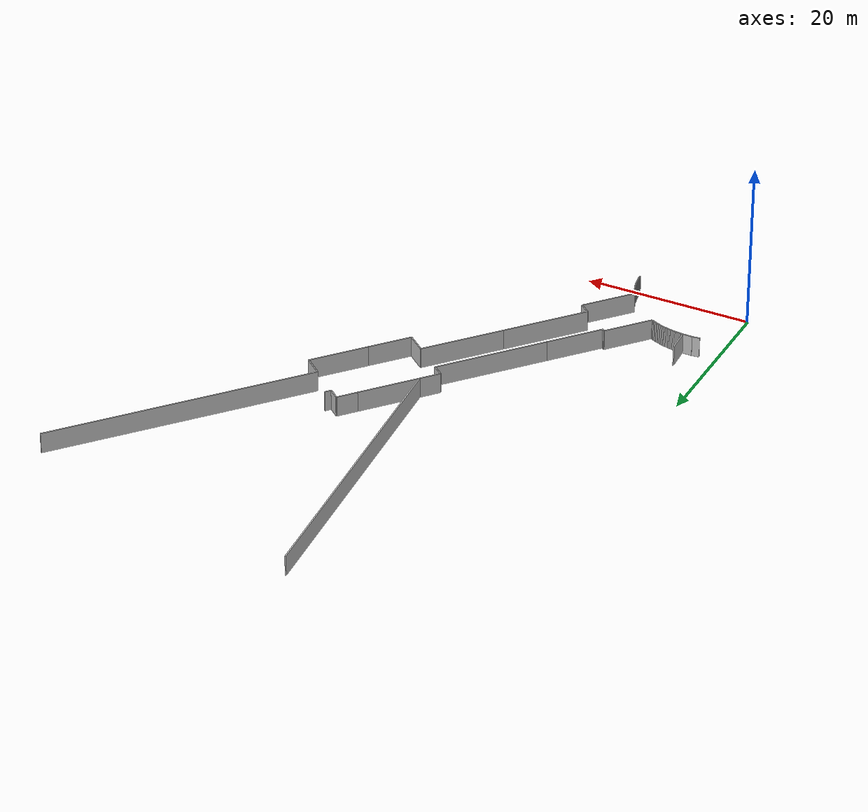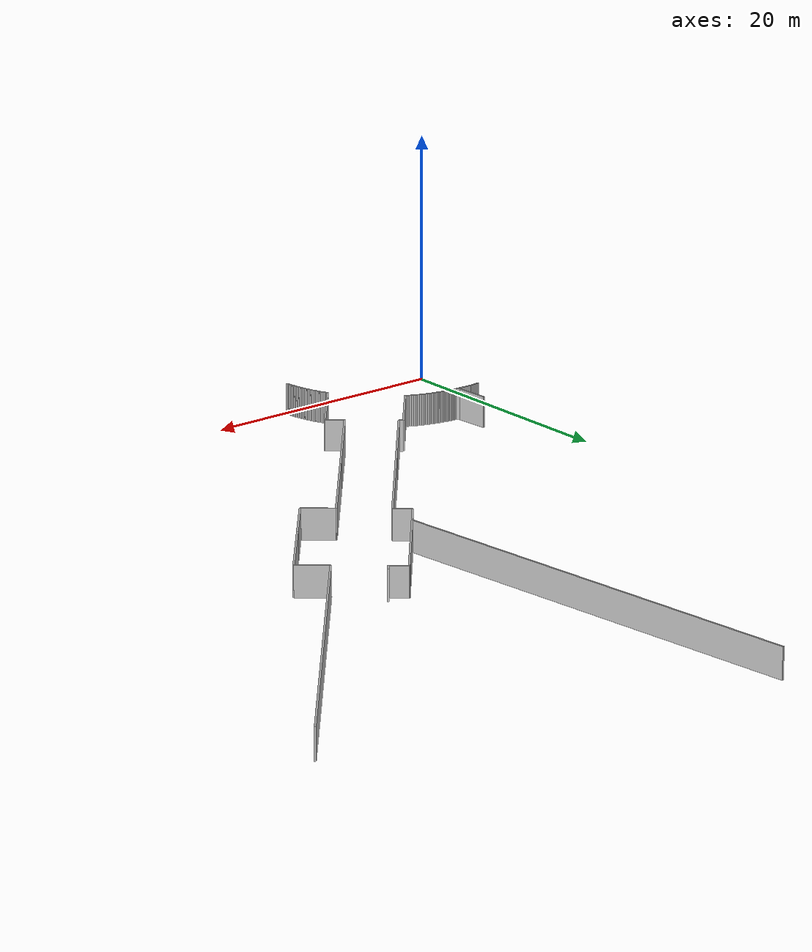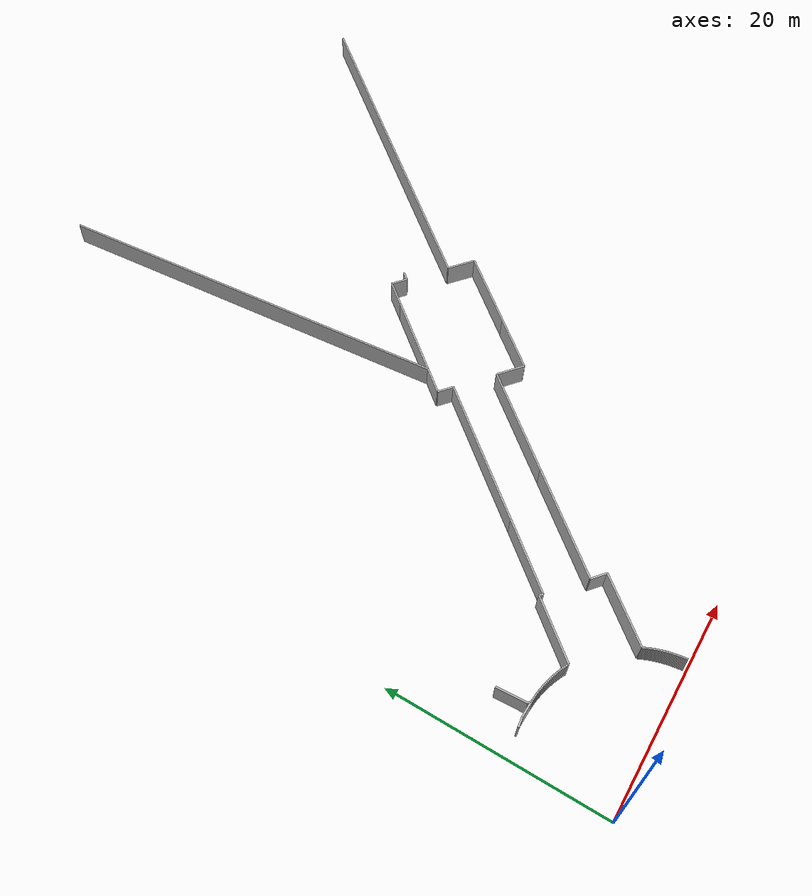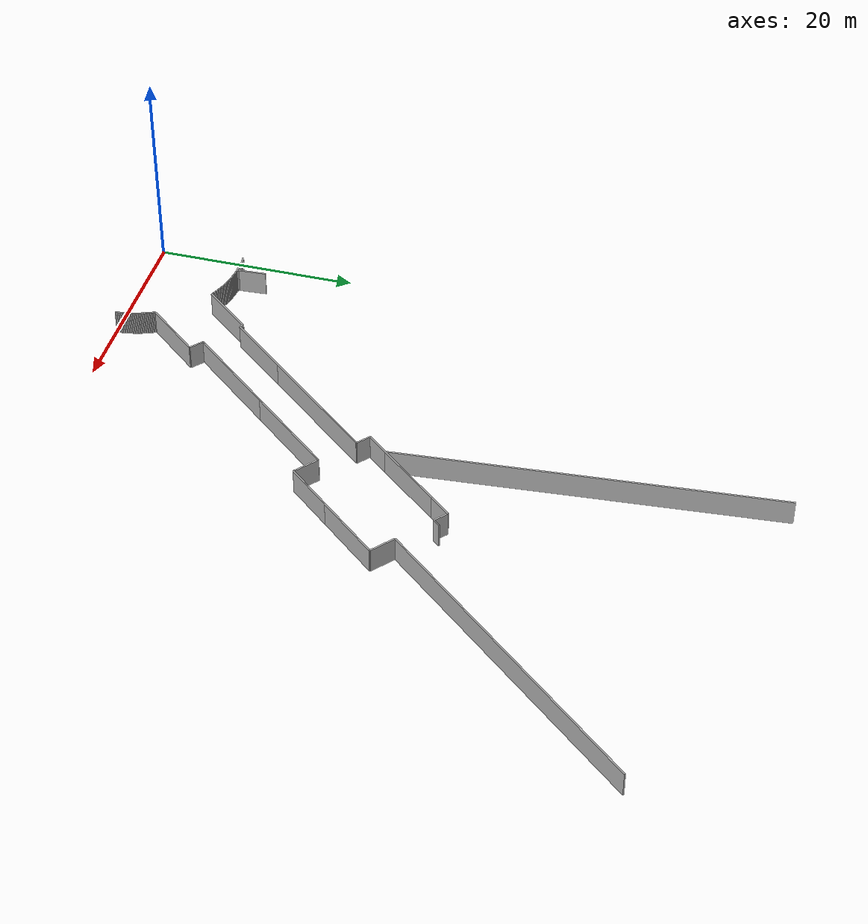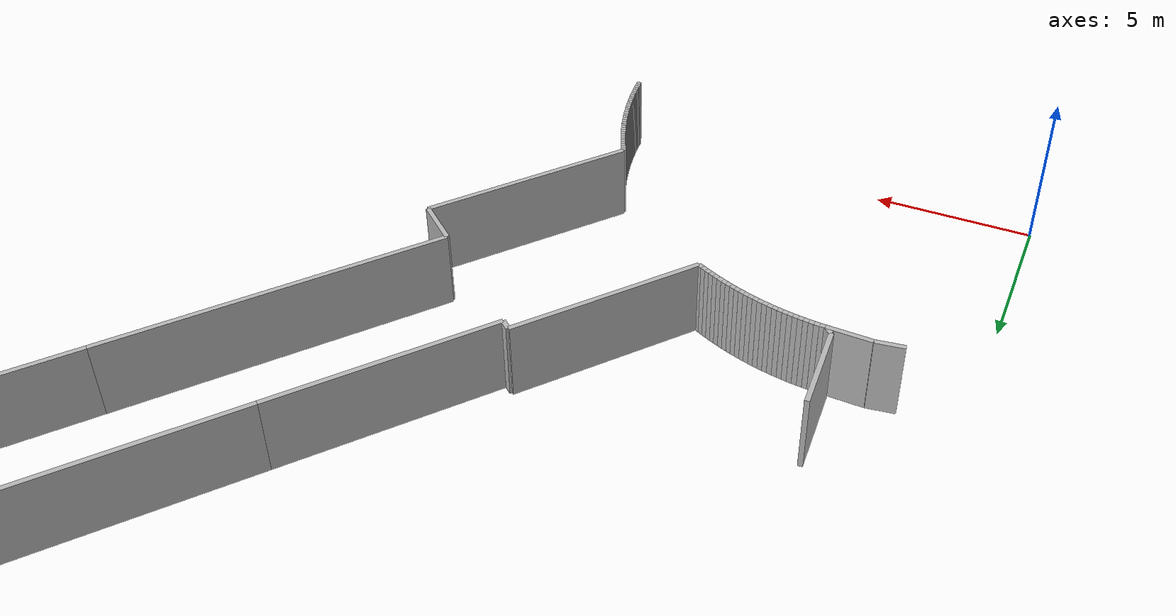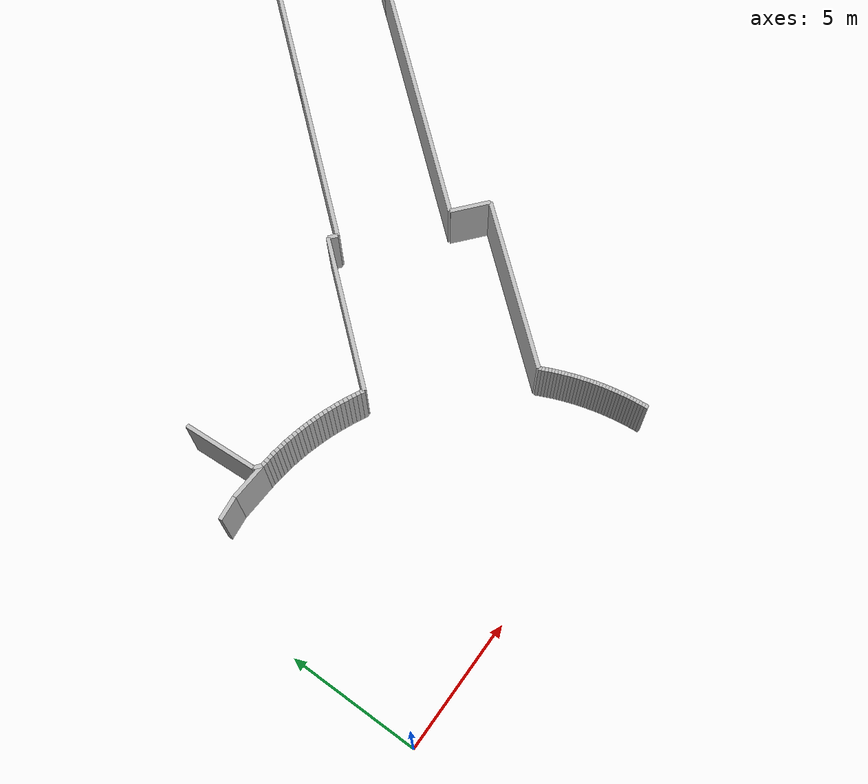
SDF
<?xml version="1.0" ?>
<sdf version="1.6">
  <model name="sps_4111">
    <pose frame="">0 0 0 0 -0 0</pose>
    <static>1</static>
    <self_collide>0</self_collide>
    <allow_auto_disable>0</allow_auto_disable>
    <link name="Wall58">
      <kinematic>0</kinematic>
      <gravity>1</gravity>
      <self_collide>0</self_collide>
      <collision name="collision">
        <geometry>
          <box>
            <size>0.350354 0.15 2.5</size>
          </box>
        </geometry>
        <pose frame="">0 0 0 0 -0 0</pose>
      </collision>
      <visual name="visual">
        <geometry>
          <box>
            <size>0.350354 0.15 2.5</size>
          </box>
        </geometry>
        <pose frame="">0 0 0 0 -0 0</pose>
        <cast_shadows>1</cast_shadows>
        <transparency>0.0</transparency>
      </visual>
      <pose frame="">12.3785 12.6861 1.25 0 0 -0.702523</pose>
    </link>
    <link name="Wall59">
      <kinematic>0</kinematic>
      <gravity>1</gravity>
      <self_collide>0</self_collide>
      <collision name="collision">
        <geometry>
          <box>
            <size>13.6817 0.15 2.5</size>
          </box>
        </geometry>
        <pose frame="">0 0 0 0 -0 0</pose>
      </collision>
      <visual name="visual">
        <geometry>
          <box>
            <size>13.6817 0.15 2.5</size>
          </box>
        </geometry>
        <pose frame="">0 0 0 0 -0 0</pose>
        <cast_shadows>1</cast_shadows>
        <transparency>0.0</transparency>
      </visual>
      <pose frame="">21.4438 23.1119 1.25 0 0 -2.27383</pose>
    </link>
    <link name="Wall60">
      <kinematic>0</kinematic>
      <gravity>1</gravity>
      <self_collide>0</self_collide>
      <collision name="collision">
        <geometry>
          <box>
            <size>6.97376 0.15 2.5</size>
          </box>
        </geometry>
        <pose frame="">0 0 0 0 -0 0</pose>
      </collision>
      <visual name="visual">
        <geometry>
          <box>
            <size>6.97376 0.15 2.5</size>
          </box>
        </geometry>
        <pose frame="">0 0 0 0 -0 0</pose>
        <cast_shadows>1</cast_shadows>
        <transparency>0.0</transparency>
      </visual>
      <pose frame="">14.7666 15.233 1.25 0 0 -2.27383</pose>
    </link>
    <link name="Wall61">
      <kinematic>0</kinematic>
      <gravity>1</gravity>
      <self_collide>0</self_collide>
      <collision name="collision">
        <geometry>
          <box>
            <size>2.50061 0.15 2.5</size>
          </box>
        </geometry>
        <pose frame="">0 0 0 0 -0 0</pose>
      </collision>
      <visual name="visual">
        <geometry>
          <box>
            <size>2.50061 0.15 2.5</size>
          </box>
        </geometry>
        <pose frame="">0 0 0 0 -0 0</pose>
        <cast_shadows>1</cast_shadows>
        <transparency>0.0</transparency>
      </visual>
      <pose frame="">31.9957 37.8829 1.25 0 0 -2.27365</pose>
    </link>
    <link name="Wall62">
      <kinematic>0</kinematic>
      <gravity>1</gravity>
      <self_collide>0</self_collide>
      <collision name="collision">
        <geometry>
          <box>
            <size>5.28264 0.15 2.5</size>
          </box>
        </geometry>
        <pose frame="">0 0 0 0 -0 0</pose>
      </collision>
      <visual name="visual">
        <geometry>
          <box>
            <size>5.28264 0.15 2.5</size>
          </box>
        </geometry>
        <pose frame="">0 0 0 0 -0 0</pose>
        <cast_shadows>1</cast_shadows>
        <transparency>0.0</transparency>
      </visual>
      <pose frame="">32.7617 25.9493 1.25 0 -0 0.867764</pose>
    </link>
    <link name="Wall63">
      <kinematic>0</kinematic>
      <gravity>1</gravity>
      <self_collide>0</self_collide>
      <collision name="collision">
        <geometry>
          <box>
            <size>7.21753 0.15 2.5</size>
          </box>
        </geometry>
        <pose frame="">0 0 0 0 -0 0</pose>
      </collision>
      <visual name="visual">
        <geometry>
          <box>
            <size>7.21753 0.15 2.5</size>
          </box>
        </geometry>
        <pose frame="">0 0 0 0 -0 0</pose>
        <cast_shadows>1</cast_shadows>
        <transparency>0.0</transparency>
      </visual>
      <pose frame="">36.8026 30.7174 1.25 0 -0 0.867764</pose>
    </link>
    <link name="Wall65">
      <kinematic>0</kinematic>
      <gravity>1</gravity>
      <self_collide>0</self_collide>
      <collision name="collision">
        <geometry>
          <box>
            <size>0.806139 0.15 2.5</size>
          </box>
        </geometry>
        <pose frame="">0 0 0 0 -0 0</pose>
      </collision>
      <visual name="visual">
        <geometry>
          <box>
            <size>0.806139 0.15 2.5</size>
          </box>
        </geometry>
        <pose frame="">0 0 0 0 -0 0</pose>
        <cast_shadows>1</cast_shadows>
        <transparency>0.0</transparency>
      </visual>
      <pose frame="">34.2089 38.174 1.25 0 0 -2.2738</pose>
    </link>
    <link name="Wall140">
      <kinematic>0</kinematic>
      <gravity>1</gravity>
      <self_collide>0</self_collide>
      <collision name="collision">
        <geometry>
          <box>
            <size>1.51018 0.15 2.5</size>
          </box>
        </geometry>
        <pose frame="">0 0 0 0 -0 0</pose>
      </collision>
      <visual name="visual">
        <geometry>
          <box>
            <size>1.51018 0.15 2.5</size>
          </box>
        </geometry>
        <pose frame="">0 0 0 0 -0 0</pose>
        <cast_shadows>1</cast_shadows>
        <transparency>0.0</transparency>
      </visual>
      <pose frame="">16.2469 9.40868 1.25 0 0 -0.702713</pose>
    </link>
    <link name="Wall141">
      <kinematic>0</kinematic>
      <gravity>1</gravity>
      <self_collide>0</self_collide>
      <collision name="collision">
        <geometry>
          <box>
            <size>1.50024 0.15 2.5</size>
          </box>
        </geometry>
        <pose frame="">0 0 0 0 -0 0</pose>
      </collision>
      <visual name="visual">
        <geometry>
          <box>
            <size>1.50024 0.15 2.5</size>
          </box>
        </geometry>
        <pose frame="">0 0 0 0 -0 0</pose>
        <cast_shadows>1</cast_shadows>
        <transparency>0.0</transparency>
      </visual>
      <pose frame="">25.2942 28.8154 1.25 0 0 -0.70251</pose>
    </link>
    <link name="Wall249">
      <kinematic>0</kinematic>
      <gravity>1</gravity>
      <self_collide>0</self_collide>
      <collision name="collision">
        <geometry>
          <box>
            <size>5.99993 0.15 2.5</size>
          </box>
        </geometry>
        <pose frame="">0 0 0 0 -0 0</pose>
      </collision>
      <visual name="visual">
        <geometry>
          <box>
            <size>5.99993 0.15 2.5</size>
          </box>
        </geometry>
        <pose frame="">0 0 0 0 -0 0</pose>
        <cast_shadows>1</cast_shadows>
        <transparency>0.0</transparency>
      </visual>
      <pose frame="">10.3054 10.5105 1.25 0 -0 0.867846</pose>
    </link>
    <link name="Wall315">
      <kinematic>0</kinematic>
      <gravity>1</gravity>
      <self_collide>0</self_collide>
      <collision name="collision">
        <geometry>
          <box>
            <size>6.63013 0.15 2.5</size>
          </box>
        </geometry>
        <pose frame="">0 0 0 0 -0 0</pose>
      </collision>
      <visual name="visual">
        <geometry>
          <box>
            <size>6.63013 0.15 2.5</size>
          </box>
        </geometry>
        <pose frame="">0 0 0 0 -0 0</pose>
        <cast_shadows>1</cast_shadows>
        <transparency>0.0</transparency>
      </visual>
      <pose frame="">14.6799 6.39159 1.25 0 0 -2.2738</pose>
    </link>
    <link name="Wall379">
      <kinematic>0</kinematic>
      <gravity>1</gravity>
      <self_collide>0</self_collide>
      <collision name="collision">
        <geometry>
          <box>
            <size>2.66028 0.15 2.5</size>
          </box>
        </geometry>
        <pose frame="">0 0 0 0 -0 0</pose>
      </collision>
      <visual name="visual">
        <geometry>
          <box>
            <size>2.66028 0.15 2.5</size>
          </box>
        </geometry>
        <pose frame="">0 0 0 0 -0 0</pose>
        <cast_shadows>1</cast_shadows>
        <transparency>0.0</transparency>
      </visual>
      <pose frame="">38.1209 34.3303 1.25 0 -0 2.43873</pose>
    </link>
    <link name="Wall471">
      <kinematic>0</kinematic>
      <gravity>1</gravity>
      <self_collide>0</self_collide>
      <collision name="collision">
        <geometry>
          <box>
            <size>10.4816 0.15 2.5</size>
          </box>
        </geometry>
        <pose frame="">0 0 0 0 -0 0</pose>
      </collision>
      <visual name="visual">
        <geometry>
          <box>
            <size>10.4816 0.15 2.5</size>
          </box>
        </geometry>
        <pose frame="">0 0 0 0 -0 0</pose>
        <cast_shadows>1</cast_shadows>
        <transparency>0.0</transparency>
      </visual>
      <pose frame="">19.0589 13.8949 1.25 0 -0 0.867786</pose>
    </link>
    <link name="Wall472">
      <kinematic>0</kinematic>
      <gravity>1</gravity>
      <self_collide>0</self_collide>
      <collision name="collision">
        <geometry>
          <box>
            <size>10.1733 0.15 2.5</size>
          </box>
        </geometry>
        <pose frame="">0 0 0 0 -0 0</pose>
      </collision>
      <visual name="visual">
        <geometry>
          <box>
            <size>10.1733 0.15 2.5</size>
          </box>
        </geometry>
        <pose frame="">0 0 0 0 -0 0</pose>
        <cast_shadows>1</cast_shadows>
        <transparency>0.0</transparency>
      </visual>
      <pose frame="">25.7358 21.7737 1.25 0 -0 0.867786</pose>
    </link>
    <link name="Wall473">
      <kinematic>0</kinematic>
      <gravity>1</gravity>
      <self_collide>0</self_collide>
      <collision name="collision">
        <geometry>
          <box>
            <size>2.66041 0.15 2.5</size>
          </box>
        </geometry>
        <pose frame="">0 0 0 0 -0 0</pose>
      </collision>
      <visual name="visual">
        <geometry>
          <box>
            <size>2.66041 0.15 2.5</size>
          </box>
        </geometry>
        <pose frame="">0 0 0 0 -0 0</pose>
        <cast_shadows>1</cast_shadows>
        <transparency>0.0</transparency>
      </visual>
      <pose frame="">30.0392 24.7943 1.25 0 0 -0.703025</pose>
    </link>
    <link name="Wall642">
      <kinematic>0</kinematic>
      <gravity>1</gravity>
      <self_collide>0</self_collide>
      <collision name="collision">
        <geometry>
          <box>
            <size>0.299507 0.15 2.5</size>
          </box>
        </geometry>
        <pose frame="">0 0 0 0 -0 0</pose>
      </collision>
      <visual name="visual">
        <geometry>
          <box>
            <size>0.299507 0.15 2.5</size>
          </box>
        </geometry>
        <pose frame="">0 0 0 0 -0 0</pose>
        <cast_shadows>1</cast_shadows>
        <transparency>0.0</transparency>
      </visual>
      <pose frame="">4.11254 9.46669 1.25 0 0 -0.704471</pose>
    </link>
    <link name="Wall643">
      <kinematic>0</kinematic>
      <gravity>1</gravity>
      <self_collide>0</self_collide>
      <collision name="collision">
        <geometry>
          <box>
            <size>2.5007 0.15 2.5</size>
          </box>
        </geometry>
        <pose frame="">0 0 0 0 -0 0</pose>
      </collision>
      <visual name="visual">
        <geometry>
          <box>
            <size>2.5007 0.15 2.5</size>
          </box>
        </geometry>
        <pose frame="">0 0 0 0 -0 0</pose>
        <cast_shadows>1</cast_shadows>
        <transparency>0.0</transparency>
      </visual>
      <pose frame="">25.5302 30.2538 1.25 0 0 -2.27404</pose>
    </link>
    <link name="Wall644">
      <kinematic>0</kinematic>
      <gravity>1</gravity>
      <self_collide>0</self_collide>
      <collision name="collision">
        <geometry>
          <box>
            <size>1.50045 0.15 2.5</size>
          </box>
        </geometry>
        <pose frame="">0 0 0 0 -0 0</pose>
      </collision>
      <visual name="visual">
        <geometry>
          <box>
            <size>1.50045 0.15 2.5</size>
          </box>
        </geometry>
        <pose frame="">0 0 0 0 -0 0</pose>
        <cast_shadows>1</cast_shadows>
        <transparency>0.0</transparency>
      </visual>
      <pose frame="">33.3761 38.3517 1.25 0 -0 2.43829</pose>
    </link>
    <link name="Wall645">
      <kinematic>0</kinematic>
      <gravity>1</gravity>
      <self_collide>0</self_collide>
      <collision name="collision">
        <geometry>
          <box>
            <size>32.5434 0.15 2.5</size>
          </box>
        </geometry>
        <pose frame="">0 0 0 0 -0 0</pose>
      </collision>
      <visual name="visual">
        <geometry>
          <box>
            <size>32.5434 0.15 2.5</size>
          </box>
        </geometry>
        <pose frame="">0 0 0 0 -0 0</pose>
        <cast_shadows>1</cast_shadows>
        <transparency>0.0</transparency>
      </visual>
      <pose frame="">47.6261 47.6037 1.25 0 -0 0.867779</pose>
    </link>
    <link name="Wall1113">
      <kinematic>0</kinematic>
      <gravity>1</gravity>
      <self_collide>0</self_collide>
      <collision name="collision">
        <geometry>
          <box>
            <size>2.75885 0.15 2.5</size>
          </box>
        </geometry>
        <pose frame="">0 0 0 0 -0 0</pose>
      </collision>
      <visual name="visual">
        <geometry>
          <box>
            <size>2.75885 0.15 2.5</size>
          </box>
        </geometry>
        <pose frame="">0 0 0 0 -0 0</pose>
        <cast_shadows>1</cast_shadows>
        <transparency>0.0</transparency>
      </visual>
      <pose frame="">3.92046 10.9409 1.25 0 0 -1.51393</pose>
    </link>
    <link name="Wall1114">
      <kinematic>0</kinematic>
      <gravity>1</gravity>
      <self_collide>0</self_collide>
      <collision name="collision">
        <geometry>
          <box>
            <size>0.299202 0.15 2.5</size>
          </box>
        </geometry>
        <pose frame="">0 0 0 0 -0 0</pose>
      </collision>
      <visual name="visual">
        <geometry>
          <box>
            <size>0.299202 0.15 2.5</size>
          </box>
        </geometry>
        <pose frame="">0 0 0 0 -0 0</pose>
        <cast_shadows>1</cast_shadows>
        <transparency>0.0</transparency>
      </visual>
      <pose frame="">4.11285 9.46678 1.25 0 0 -0.704533</pose>
    </link>
    <link name="Wall1115">
      <kinematic>0</kinematic>
      <gravity>1</gravity>
      <self_collide>0</self_collide>
      <collision name="collision">
        <geometry>
          <box>
            <size>1.3896 0.15 2.5</size>
          </box>
        </geometry>
        <pose frame="">0 0 0 0 -0 0</pose>
      </collision>
      <visual name="visual">
        <geometry>
          <box>
            <size>1.3896 0.15 2.5</size>
          </box>
        </geometry>
        <pose frame="">0 0 0 0 -0 0</pose>
        <cast_shadows>1</cast_shadows>
        <transparency>0.0</transparency>
      </visual>
      <pose frame="">3.53274 9.40129 1.25 0 -0 3.09638</pose>
    </link>
    <link name="Wall1116">
      <kinematic>0</kinematic>
      <gravity>1</gravity>
      <self_collide>0</self_collide>
      <collision name="collision">
        <geometry>
          <box>
            <size>0.884401 0.15 2.5</size>
          </box>
        </geometry>
        <pose frame="">0 0 0 0 -0 0</pose>
      </collision>
      <visual name="visual">
        <geometry>
          <box>
            <size>0.884401 0.15 2.5</size>
          </box>
        </geometry>
        <pose frame="">0 0 0 0 -0 0</pose>
        <cast_shadows>1</cast_shadows>
        <transparency>0.0</transparency>
      </visual>
      <pose frame="">2.39974 9.3788 1.25 0 0 -3.01941</pose>
    </link>
    <link name="Wall1377">
      <kinematic>0</kinematic>
      <gravity>1</gravity>
      <self_collide>0</self_collide>
      <collision name="collision">
        <geometry>
          <box>
            <size>7.49982 0.15 2.5</size>
          </box>
        </geometry>
        <pose frame="">0 0 0 0 -0 0</pose>
      </collision>
      <visual name="visual">
        <geometry>
          <box>
            <size>7.49982 0.15 2.5</size>
          </box>
        </geometry>
        <pose frame="">0 0 0 0 -0 0</pose>
        <cast_shadows>1</cast_shadows>
        <transparency>0.0</transparency>
      </visual>
      <pose frame="">28.7634 34.0683 1.25 0 0 -2.2738</pose>
    </link>
    <link name="Wall1378">
      <kinematic>0</kinematic>
      <gravity>1</gravity>
      <self_collide>0</self_collide>
      <collision name="collision">
        <geometry>
          <box>
            <size>37.282 0.15 2.5</size>
          </box>
        </geometry>
        <pose frame="">0 0 0 0 -0 0</pose>
      </collision>
      <visual name="visual">
        <geometry>
          <box>
            <size>37.282 0.15 2.5</size>
          </box>
        </geometry>
        <pose frame="">0 0 0 0 -0 0</pose>
        <cast_shadows>1</cast_shadows>
        <transparency>0.0</transparency>
      </visual>
      <pose frame="">24.8054 49.7853 1.25 0 -0 1.65317</pose>
    </link>
    <link name="Wall8069">
      <kinematic>0</kinematic>
      <gravity>1</gravity>
      <self_collide>0</self_collide>
      <collision name="collision">
        <geometry>
          <box>
            <size>0.113875 0.15 2.5</size>
          </box>
        </geometry>
        <pose frame="">0 0 0 0 -0 0</pose>
      </collision>
      <visual name="visual">
        <geometry>
          <box>
            <size>0.113875 0.15 2.5</size>
          </box>
        </geometry>
        <pose frame="">0 0 0 0 -0 0</pose>
        <cast_shadows>1</cast_shadows>
        <transparency>0.0</transparency>
      </visual>
      <pose frame="">13.5402 0.0952901 1.25 0 -0 1.63408</pose>
    </link>
    <link name="Wall8070">
      <kinematic>0</kinematic>
      <gravity>1</gravity>
      <self_collide>0</self_collide>
      <collision name="collision">
        <geometry>
          <box>
            <size>0.113729 0.15 2.5</size>
          </box>
        </geometry>
        <pose frame="">0 0 0 0 -0 0</pose>
      </collision>
      <visual name="visual">
        <geometry>
          <box>
            <size>0.113729 0.15 2.5</size>
          </box>
        </geometry>
        <pose frame="">0 0 0 0 -0 0</pose>
        <cast_shadows>1</cast_shadows>
        <transparency>0.0</transparency>
      </visual>
      <pose frame="">13.5323 0.208815 1.25 0 -0 1.64654</pose>
    </link>
    <link name="Wall8071">
      <kinematic>0</kinematic>
      <gravity>1</gravity>
      <self_collide>0</self_collide>
      <collision name="collision">
        <geometry>
          <box>
            <size>0.113601 0.15 2.5</size>
          </box>
        </geometry>
        <pose frame="">0 0 0 0 -0 0</pose>
      </collision>
      <visual name="visual">
        <geometry>
          <box>
            <size>0.113601 0.15 2.5</size>
          </box>
        </geometry>
        <pose frame="">0 0 0 0 -0 0</pose>
        <cast_shadows>1</cast_shadows>
        <transparency>0.0</transparency>
      </visual>
      <pose frame="">13.523 0.322097 1.25 0 -0 1.65902</pose>
    </link>
    <link name="Wall8072">
      <kinematic>0</kinematic>
      <gravity>1</gravity>
      <self_collide>0</self_collide>
      <collision name="collision">
        <geometry>
          <box>
            <size>0.113752 0.15 2.5</size>
          </box>
        </geometry>
        <pose frame="">0 0 0 0 -0 0</pose>
      </collision>
      <visual name="visual">
        <geometry>
          <box>
            <size>0.113752 0.15 2.5</size>
          </box>
        </geometry>
        <pose frame="">0 0 0 0 -0 0</pose>
        <cast_shadows>1</cast_shadows>
        <transparency>0.0</transparency>
      </visual>
      <pose frame="">13.5125 0.435286 1.25 0 -0 1.66753</pose>
    </link>
    <link name="Wall8073">
      <kinematic>0</kinematic>
      <gravity>1</gravity>
      <self_collide>0</self_collide>
      <collision name="collision">
        <geometry>
          <box>
            <size>0.113674 0.15 2.5</size>
          </box>
        </geometry>
        <pose frame="">0 0 0 0 -0 0</pose>
      </collision>
      <visual name="visual">
        <geometry>
          <box>
            <size>0.113674 0.15 2.5</size>
          </box>
        </geometry>
        <pose frame="">0 0 0 0 -0 0</pose>
        <cast_shadows>1</cast_shadows>
        <transparency>0.0</transparency>
      </visual>
      <pose frame="">13.5008 0.548385 1.25 0 -0 1.68163</pose>
    </link>
    <link name="Wall8074">
      <kinematic>0</kinematic>
      <gravity>1</gravity>
      <self_collide>0</self_collide>
      <collision name="collision">
        <geometry>
          <box>
            <size>0.113876 0.15 2.5</size>
          </box>
        </geometry>
        <pose frame="">0 0 0 0 -0 0</pose>
      </collision>
      <visual name="visual">
        <geometry>
          <box>
            <size>0.113876 0.15 2.5</size>
          </box>
        </geometry>
        <pose frame="">0 0 0 0 -0 0</pose>
        <cast_shadows>1</cast_shadows>
        <transparency>0.0</transparency>
      </visual>
      <pose frame="">13.4876 0.661391 1.25 0 -0 1.69223</pose>
    </link>
    <link name="Wall8075">
      <kinematic>0</kinematic>
      <gravity>1</gravity>
      <self_collide>0</self_collide>
      <collision name="collision">
        <geometry>
          <box>
            <size>0.113606 0.15 2.5</size>
          </box>
        </geometry>
        <pose frame="">0 0 0 0 -0 0</pose>
      </collision>
      <visual name="visual">
        <geometry>
          <box>
            <size>0.113606 0.15 2.5</size>
          </box>
        </geometry>
        <pose frame="">0 0 0 0 -0 0</pose>
        <cast_shadows>1</cast_shadows>
        <transparency>0.0</transparency>
      </visual>
      <pose frame="">13.4732 0.774215 1.25 0 -0 1.70335</pose>
    </link>
    <link name="Wall8076">
      <kinematic>0</kinematic>
      <gravity>1</gravity>
      <self_collide>0</self_collide>
      <collision name="collision">
        <geometry>
          <box>
            <size>0.11374 0.15 2.5</size>
          </box>
        </geometry>
        <pose frame="">0 0 0 0 -0 0</pose>
      </collision>
      <visual name="visual">
        <geometry>
          <box>
            <size>0.11374 0.15 2.5</size>
          </box>
        </geometry>
        <pose frame="">0 0 0 0 -0 0</pose>
        <cast_shadows>1</cast_shadows>
        <transparency>0.0</transparency>
      </visual>
      <pose frame="">13.4575 0.886794 1.25 0 -0 1.71565</pose>
    </link>
    <link name="Wall8077">
      <kinematic>0</kinematic>
      <gravity>1</gravity>
      <self_collide>0</self_collide>
      <collision name="collision">
        <geometry>
          <box>
            <size>0.113765 0.15 2.5</size>
          </box>
        </geometry>
        <pose frame="">0 0 0 0 -0 0</pose>
      </collision>
      <visual name="visual">
        <geometry>
          <box>
            <size>0.113765 0.15 2.5</size>
          </box>
        </geometry>
        <pose frame="">0 0 0 0 -0 0</pose>
        <cast_shadows>1</cast_shadows>
        <transparency>0.0</transparency>
      </visual>
      <pose frame="">13.4405 0.999282 1.25 0 -0 1.7243</pose>
    </link>
    <link name="Wall8078">
      <kinematic>0</kinematic>
      <gravity>1</gravity>
      <self_collide>0</self_collide>
      <collision name="collision">
        <geometry>
          <box>
            <size>0.113777 0.15 2.5</size>
          </box>
        </geometry>
        <pose frame="">0 0 0 0 -0 0</pose>
      </collision>
      <visual name="visual">
        <geometry>
          <box>
            <size>0.113777 0.15 2.5</size>
          </box>
        </geometry>
        <pose frame="">0 0 0 0 -0 0</pose>
        <cast_shadows>1</cast_shadows>
        <transparency>0.0</transparency>
      </visual>
      <pose frame="">13.4224 1.11159 1.25 0 -0 1.73841</pose>
    </link>
    <link name="Wall8079">
      <kinematic>0</kinematic>
      <gravity>1</gravity>
      <self_collide>0</self_collide>
      <collision name="collision">
        <geometry>
          <box>
            <size>0.113775 0.15 2.5</size>
          </box>
        </geometry>
        <pose frame="">0 0 0 0 -0 0</pose>
      </collision>
      <visual name="visual">
        <geometry>
          <box>
            <size>0.113775 0.15 2.5</size>
          </box>
        </geometry>
        <pose frame="">0 0 0 0 -0 0</pose>
        <cast_shadows>1</cast_shadows>
        <transparency>0.0</transparency>
      </visual>
      <pose frame="">13.4029 1.22368 1.25 0 -0 1.74767</pose>
    </link>
    <link name="Wall8080">
      <kinematic>0</kinematic>
      <gravity>1</gravity>
      <self_collide>0</self_collide>
      <collision name="collision">
        <geometry>
          <box>
            <size>0.113659 0.15 2.5</size>
          </box>
        </geometry>
        <pose frame="">0 0 0 0 -0 0</pose>
      </collision>
      <visual name="visual">
        <geometry>
          <box>
            <size>0.113659 0.15 2.5</size>
          </box>
        </geometry>
        <pose frame="">0 0 0 0 -0 0</pose>
        <cast_shadows>1</cast_shadows>
        <transparency>0.0</transparency>
      </visual>
      <pose frame="">13.3822 1.33549 1.25 0 -0 1.75987</pose>
    </link>
    <link name="Wall8081">
      <kinematic>0</kinematic>
      <gravity>1</gravity>
      <self_collide>0</self_collide>
      <collision name="collision">
        <geometry>
          <box>
            <size>0.113847 0.15 2.5</size>
          </box>
        </geometry>
        <pose frame="">0 0 0 0 -0 0</pose>
      </collision>
      <visual name="visual">
        <geometry>
          <box>
            <size>0.113847 0.15 2.5</size>
          </box>
        </geometry>
        <pose frame="">0 0 0 0 -0 0</pose>
        <cast_shadows>1</cast_shadows>
        <transparency>0.0</transparency>
      </visual>
      <pose frame="">13.3602 1.4471 1.25 0 -0 1.77103</pose>
    </link>
    <link name="Wall8082">
      <kinematic>0</kinematic>
      <gravity>1</gravity>
      <self_collide>0</self_collide>
      <collision name="collision">
        <geometry>
          <box>
            <size>0.113764 0.15 2.5</size>
          </box>
        </geometry>
        <pose frame="">0 0 0 0 -0 0</pose>
      </collision>
      <visual name="visual">
        <geometry>
          <box>
            <size>0.113764 0.15 2.5</size>
          </box>
        </geometry>
        <pose frame="">0 0 0 0 -0 0</pose>
        <cast_shadows>1</cast_shadows>
        <transparency>0.0</transparency>
      </visual>
      <pose frame="">13.3368 1.55849 1.25 0 -0 1.78324</pose>
    </link>
    <link name="Wall8083">
      <kinematic>0</kinematic>
      <gravity>1</gravity>
      <self_collide>0</self_collide>
      <collision name="collision">
        <geometry>
          <box>
            <size>0.113611 0.15 2.5</size>
          </box>
        </geometry>
        <pose frame="">0 0 0 0 -0 0</pose>
      </collision>
      <visual name="visual">
        <geometry>
          <box>
            <size>0.113611 0.15 2.5</size>
          </box>
        </geometry>
        <pose frame="">0 0 0 0 -0 0</pose>
        <cast_shadows>1</cast_shadows>
        <transparency>0.0</transparency>
      </visual>
      <pose frame="">13.3122 1.66948 1.25 0 -0 1.79453</pose>
    </link>
    <link name="Wall8084">
      <kinematic>0</kinematic>
      <gravity>1</gravity>
      <self_collide>0</self_collide>
      <collision name="collision">
        <geometry>
          <box>
            <size>0.113752 0.15 2.5</size>
          </box>
        </geometry>
        <pose frame="">0 0 0 0 -0 0</pose>
      </collision>
      <visual name="visual">
        <geometry>
          <box>
            <size>0.113752 0.15 2.5</size>
          </box>
        </geometry>
        <pose frame="">0 0 0 0 -0 0</pose>
        <cast_shadows>1</cast_shadows>
        <transparency>0.0</transparency>
      </visual>
      <pose frame="">13.2863 1.78017 1.25 0 -0 1.80693</pose>
    </link>
    <link name="Wall8085">
      <kinematic>0</kinematic>
      <gravity>1</gravity>
      <self_collide>0</self_collide>
      <collision name="collision">
        <geometry>
          <box>
            <size>0.113807 0.15 2.5</size>
          </box>
        </geometry>
        <pose frame="">0 0 0 0 -0 0</pose>
      </collision>
      <visual name="visual">
        <geometry>
          <box>
            <size>0.113807 0.15 2.5</size>
          </box>
        </geometry>
        <pose frame="">0 0 0 0 -0 0</pose>
        <cast_shadows>1</cast_shadows>
        <transparency>0.0</transparency>
      </visual>
      <pose frame="">13.2592 1.89067 1.25 0 -0 1.81564</pose>
    </link>
    <link name="Wall8086">
      <kinematic>0</kinematic>
      <gravity>1</gravity>
      <self_collide>0</self_collide>
      <collision name="collision">
        <geometry>
          <box>
            <size>0.113565 0.15 2.5</size>
          </box>
        </geometry>
        <pose frame="">0 0 0 0 -0 0</pose>
      </collision>
      <visual name="visual">
        <geometry>
          <box>
            <size>0.113565 0.15 2.5</size>
          </box>
        </geometry>
        <pose frame="">0 0 0 0 -0 0</pose>
        <cast_shadows>1</cast_shadows>
        <transparency>0.0</transparency>
      </visual>
      <pose frame="">13.2309 2.00078 1.25 0 -0 1.82894</pose>
    </link>
    <link name="Wall8087">
      <kinematic>0</kinematic>
      <gravity>1</gravity>
      <self_collide>0</self_collide>
      <collision name="collision">
        <geometry>
          <box>
            <size>0.113883 0.15 2.5</size>
          </box>
        </geometry>
        <pose frame="">0 0 0 0 -0 0</pose>
      </collision>
      <visual name="visual">
        <geometry>
          <box>
            <size>0.113883 0.15 2.5</size>
          </box>
        </geometry>
        <pose frame="">0 0 0 0 -0 0</pose>
        <cast_shadows>1</cast_shadows>
        <transparency>0.0</transparency>
      </visual>
      <pose frame="">13.2013 2.11058 1.25 0 -0 1.8393</pose>
    </link>
    <link name="Wall8088">
      <kinematic>0</kinematic>
      <gravity>1</gravity>
      <self_collide>0</self_collide>
      <collision name="collision">
        <geometry>
          <box>
            <size>0.11366 0.15 2.5</size>
          </box>
        </geometry>
        <pose frame="">0 0 0 0 -0 0</pose>
      </collision>
      <visual name="visual">
        <geometry>
          <box>
            <size>0.11366 0.15 2.5</size>
          </box>
        </geometry>
        <pose frame="">0 0 0 0 -0 0</pose>
        <cast_shadows>1</cast_shadows>
        <transparency>0.0</transparency>
      </visual>
      <pose frame="">13.1705 2.22008 1.25 0 -0 1.85212</pose>
    </link>
    <link name="Wall8089">
      <kinematic>0</kinematic>
      <gravity>1</gravity>
      <self_collide>0</self_collide>
      <collision name="collision">
        <geometry>
          <box>
            <size>0.113794 0.15 2.5</size>
          </box>
        </geometry>
        <pose frame="">0 0 0 0 -0 0</pose>
      </collision>
      <visual name="visual">
        <geometry>
          <box>
            <size>0.113794 0.15 2.5</size>
          </box>
        </geometry>
        <pose frame="">0 0 0 0 -0 0</pose>
        <cast_shadows>1</cast_shadows>
        <transparency>0.0</transparency>
      </visual>
      <pose frame="">13.1384 2.32918 1.25 0 -0 1.86184</pose>
    </link>
    <link name="Wall8090">
      <kinematic>0</kinematic>
      <gravity>1</gravity>
      <self_collide>0</self_collide>
      <collision name="collision">
        <geometry>
          <box>
            <size>0.113605 0.15 2.5</size>
          </box>
        </geometry>
        <pose frame="">0 0 0 0 -0 0</pose>
      </collision>
      <visual name="visual">
        <geometry>
          <box>
            <size>0.113605 0.15 2.5</size>
          </box>
        </geometry>
        <pose frame="">0 0 0 0 -0 0</pose>
        <cast_shadows>1</cast_shadows>
        <transparency>0.0</transparency>
      </visual>
      <pose frame="">13.105 2.43788 1.25 0 -0 1.87471</pose>
    </link>
    <link name="Wall8091">
      <kinematic>0</kinematic>
      <gravity>1</gravity>
      <self_collide>0</self_collide>
      <collision name="collision">
        <geometry>
          <box>
            <size>0.113783 0.15 2.5</size>
          </box>
        </geometry>
        <pose frame="">0 0 0 0 -0 0</pose>
      </collision>
      <visual name="visual">
        <geometry>
          <box>
            <size>0.113783 0.15 2.5</size>
          </box>
        </geometry>
        <pose frame="">0 0 0 0 -0 0</pose>
        <cast_shadows>1</cast_shadows>
        <transparency>0.0</transparency>
      </visual>
      <pose frame="">13.0705 2.54619 1.25 0 -0 1.88491</pose>
    </link>
    <link name="Wall8092">
      <kinematic>0</kinematic>
      <gravity>1</gravity>
      <self_collide>0</self_collide>
      <collision name="collision">
        <geometry>
          <box>
            <size>0.11378 0.15 2.5</size>
          </box>
        </geometry>
        <pose frame="">0 0 0 0 -0 0</pose>
      </collision>
      <visual name="visual">
        <geometry>
          <box>
            <size>0.11378 0.15 2.5</size>
          </box>
        </geometry>
        <pose frame="">0 0 0 0 -0 0</pose>
        <cast_shadows>1</cast_shadows>
        <transparency>0.0</transparency>
      </visual>
      <pose frame="">13.0347 2.65419 1.25 0 -0 1.89679</pose>
    </link>
    <link name="Wall8093">
      <kinematic>0</kinematic>
      <gravity>1</gravity>
      <self_collide>0</self_collide>
      <collision name="collision">
        <geometry>
          <box>
            <size>0.113639 0.15 2.5</size>
          </box>
        </geometry>
        <pose frame="">0 0 0 0 -0 0</pose>
      </collision>
      <visual name="visual">
        <geometry>
          <box>
            <size>0.113639 0.15 2.5</size>
          </box>
        </geometry>
        <pose frame="">0 0 0 0 -0 0</pose>
        <cast_shadows>1</cast_shadows>
        <transparency>0.0</transparency>
      </visual>
      <pose frame="">12.9976 2.7617 1.25 0 -0 1.908</pose>
    </link>
    <link name="Wall8094">
      <kinematic>0</kinematic>
      <gravity>1</gravity>
      <self_collide>0</self_collide>
      <collision name="collision">
        <geometry>
          <box>
            <size>0.113568 0.15 2.5</size>
          </box>
        </geometry>
        <pose frame="">0 0 0 0 -0 0</pose>
      </collision>
      <visual name="visual">
        <geometry>
          <box>
            <size>0.113568 0.15 2.5</size>
          </box>
        </geometry>
        <pose frame="">0 0 0 0 -0 0</pose>
        <cast_shadows>1</cast_shadows>
        <transparency>0.0</transparency>
      </visual>
      <pose frame="">12.9595 2.8687 1.25 0 -0 1.91906</pose>
    </link>
    <link name="Wall8095">
      <kinematic>0</kinematic>
      <gravity>1</gravity>
      <self_collide>0</self_collide>
      <collision name="collision">
        <geometry>
          <box>
            <size>0.113898 0.15 2.5</size>
          </box>
        </geometry>
        <pose frame="">0 0 0 0 -0 0</pose>
      </collision>
      <visual name="visual">
        <geometry>
          <box>
            <size>0.113898 0.15 2.5</size>
          </box>
        </geometry>
        <pose frame="">0 0 0 0 -0 0</pose>
        <cast_shadows>1</cast_shadows>
        <transparency>0.0</transparency>
      </visual>
      <pose frame="">12.9201 2.97539 1.25 0 -0 1.93001</pose>
    </link>
    <link name="Wall8096">
      <kinematic>0</kinematic>
      <gravity>1</gravity>
      <self_collide>0</self_collide>
      <collision name="collision">
        <geometry>
          <box>
            <size>0.113808 0.15 2.5</size>
          </box>
        </geometry>
        <pose frame="">0 0 0 0 -0 0</pose>
      </collision>
      <visual name="visual">
        <geometry>
          <box>
            <size>0.113808 0.15 2.5</size>
          </box>
        </geometry>
        <pose frame="">0 0 0 0 -0 0</pose>
        <cast_shadows>1</cast_shadows>
        <transparency>0.0</transparency>
      </visual>
      <pose frame="">12.8794 3.08171 1.25 0 -0 1.94294</pose>
    </link>
    <link name="Wall8097">
      <kinematic>0</kinematic>
      <gravity>1</gravity>
      <self_collide>0</self_collide>
      <collision name="collision">
        <geometry>
          <box>
            <size>0.113566 0.15 2.5</size>
          </box>
        </geometry>
        <pose frame="">0 0 0 0 -0 0</pose>
      </collision>
      <visual name="visual">
        <geometry>
          <box>
            <size>0.113566 0.15 2.5</size>
          </box>
        </geometry>
        <pose frame="">0 0 0 0 -0 0</pose>
        <cast_shadows>1</cast_shadows>
        <transparency>0.0</transparency>
      </visual>
      <pose frame="">12.8375 3.18739 1.25 0 -0 1.9536</pose>
    </link>
    <link name="Wall8098">
      <kinematic>0</kinematic>
      <gravity>1</gravity>
      <self_collide>0</self_collide>
      <collision name="collision">
        <geometry>
          <box>
            <size>0.113723 0.15 2.5</size>
          </box>
        </geometry>
        <pose frame="">0 0 0 0 -0 0</pose>
      </collision>
      <visual name="visual">
        <geometry>
          <box>
            <size>0.113723 0.15 2.5</size>
          </box>
        </geometry>
        <pose frame="">0 0 0 0 -0 0</pose>
        <cast_shadows>1</cast_shadows>
        <transparency>0.0</transparency>
      </visual>
      <pose frame="">12.7945 3.29259 1.25 0 -0 1.96406</pose>
    </link>
    <link name="Wall8099">
      <kinematic>0</kinematic>
      <gravity>1</gravity>
      <self_collide>0</self_collide>
      <collision name="collision">
        <geometry>
          <box>
            <size>0.113803 0.15 2.5</size>
          </box>
        </geometry>
        <pose frame="">0 0 0 0 -0 0</pose>
      </collision>
      <visual name="visual">
        <geometry>
          <box>
            <size>0.113803 0.15 2.5</size>
          </box>
        </geometry>
        <pose frame="">0 0 0 0 -0 0</pose>
        <cast_shadows>1</cast_shadows>
        <transparency>0.0</transparency>
      </visual>
      <pose frame="">12.7503 3.39741 1.25 0 -0 1.97541</pose>
    </link>
    <link name="Wall8100">
      <kinematic>0</kinematic>
      <gravity>1</gravity>
      <self_collide>0</self_collide>
      <collision name="collision">
        <geometry>
          <box>
            <size>0.113675 0.15 2.5</size>
          </box>
        </geometry>
        <pose frame="">0 0 0 0 -0 0</pose>
      </collision>
      <visual name="visual">
        <geometry>
          <box>
            <size>0.113675 0.15 2.5</size>
          </box>
        </geometry>
        <pose frame="">0 0 0 0 -0 0</pose>
        <cast_shadows>1</cast_shadows>
        <transparency>0.0</transparency>
      </visual>
      <pose frame="">12.7049 3.50169 1.25 0 -0 1.9876</pose>
    </link>
    <link name="Wall8101">
      <kinematic>0</kinematic>
      <gravity>1</gravity>
      <self_collide>0</self_collide>
      <collision name="collision">
        <geometry>
          <box>
            <size>0.113705 0.15 2.5</size>
          </box>
        </geometry>
        <pose frame="">0 0 0 0 -0 0</pose>
      </collision>
      <visual name="visual">
        <geometry>
          <box>
            <size>0.113705 0.15 2.5</size>
          </box>
        </geometry>
        <pose frame="">0 0 0 0 -0 0</pose>
        <cast_shadows>1</cast_shadows>
        <transparency>0.0</transparency>
      </visual>
      <pose frame="">12.6583 3.60539 1.25 0 -0 1.99867</pose>
    </link>
    <link name="Wall8102">
      <kinematic>0</kinematic>
      <gravity>1</gravity>
      <self_collide>0</self_collide>
      <collision name="collision">
        <geometry>
          <box>
            <size>0.113775 0.15 2.5</size>
          </box>
        </geometry>
        <pose frame="">0 0 0 0 -0 0</pose>
      </collision>
      <visual name="visual">
        <geometry>
          <box>
            <size>0.113775 0.15 2.5</size>
          </box>
        </geometry>
        <pose frame="">0 0 0 0 -0 0</pose>
        <cast_shadows>1</cast_shadows>
        <transparency>0.0</transparency>
      </visual>
      <pose frame="">12.6105 3.7086 1.25 0 -0 2.01021</pose>
    </link>
    <link name="Wall8103">
      <kinematic>0</kinematic>
      <gravity>1</gravity>
      <self_collide>0</self_collide>
      <collision name="collision">
        <geometry>
          <box>
            <size>0.113805 0.15 2.5</size>
          </box>
        </geometry>
        <pose frame="">0 0 0 0 -0 0</pose>
      </collision>
      <visual name="visual">
        <geometry>
          <box>
            <size>0.113805 0.15 2.5</size>
          </box>
        </geometry>
        <pose frame="">0 0 0 0 -0 0</pose>
        <cast_shadows>1</cast_shadows>
        <transparency>0.0</transparency>
      </visual>
      <pose frame="">12.5615 3.81129 1.25 0 -0 2.02197</pose>
    </link>
    <link name="Wall10101">
      <kinematic>0</kinematic>
      <gravity>1</gravity>
      <self_collide>0</self_collide>
      <collision name="collision">
        <geometry>
          <box>
            <size>0.160301 0.15 2.5</size>
          </box>
        </geometry>
        <pose frame="">0 0 0 0 -0 0</pose>
      </collision>
      <visual name="visual">
        <geometry>
          <box>
            <size>0.160301 0.15 2.5</size>
          </box>
        </geometry>
        <pose frame="">0 0 0 0 -0 0</pose>
        <cast_shadows>1</cast_shadows>
        <transparency>0.0</transparency>
      </visual>
      <pose frame="">8.29494 8.25868 1.25 0 -0 2.66194</pose>
    </link>
    <link name="Wall10102">
      <kinematic>0</kinematic>
      <gravity>1</gravity>
      <self_collide>0</self_collide>
      <collision name="collision">
        <geometry>
          <box>
            <size>0.160336 0.15 2.5</size>
          </box>
        </geometry>
        <pose frame="">0 0 0 0 -0 0</pose>
      </collision>
      <visual name="visual">
        <geometry>
          <box>
            <size>0.160336 0.15 2.5</size>
          </box>
        </geometry>
        <pose frame="">0 0 0 0 -0 0</pose>
        <cast_shadows>1</cast_shadows>
        <transparency>0.0</transparency>
      </visual>
      <pose frame="">8.15206 8.33137 1.25 0 -0 2.67999</pose>
    </link>
    <link name="Wall10103">
      <kinematic>0</kinematic>
      <gravity>1</gravity>
      <self_collide>0</self_collide>
      <collision name="collision">
        <geometry>
          <box>
            <size>0.160439 0.15 2.5</size>
          </box>
        </geometry>
        <pose frame="">0 0 0 0 -0 0</pose>
      </collision>
      <visual name="visual">
        <geometry>
          <box>
            <size>0.160439 0.15 2.5</size>
          </box>
        </geometry>
        <pose frame="">0 0 0 0 -0 0</pose>
        <cast_shadows>1</cast_shadows>
        <transparency>0.0</transparency>
      </visual>
      <pose frame="">8.00796 8.40178 1.25 0 -0 2.69428</pose>
    </link>
    <link name="Wall10104">
      <kinematic>0</kinematic>
      <gravity>1</gravity>
      <self_collide>0</self_collide>
      <collision name="collision">
        <geometry>
          <box>
            <size>0.160421 0.15 2.5</size>
          </box>
        </geometry>
        <pose frame="">0 0 0 0 -0 0</pose>
      </collision>
      <visual name="visual">
        <geometry>
          <box>
            <size>0.160421 0.15 2.5</size>
          </box>
        </geometry>
        <pose frame="">0 0 0 0 -0 0</pose>
        <cast_shadows>1</cast_shadows>
        <transparency>0.0</transparency>
      </visual>
      <pose frame="">7.86275 8.46998 1.25 0 -0 2.71062</pose>
    </link>
    <link name="Wall10105">
      <kinematic>0</kinematic>
      <gravity>1</gravity>
      <self_collide>0</self_collide>
      <collision name="collision">
        <geometry>
          <box>
            <size>0.160198 0.15 2.5</size>
          </box>
        </geometry>
        <pose frame="">0 0 0 0 -0 0</pose>
      </collision>
      <visual name="visual">
        <geometry>
          <box>
            <size>0.160198 0.15 2.5</size>
          </box>
        </geometry>
        <pose frame="">0 0 0 0 -0 0</pose>
        <cast_shadows>1</cast_shadows>
        <transparency>0.0</transparency>
      </visual>
      <pose frame="">7.71657 8.53578 1.25 0 -0 2.7267</pose>
    </link>
    <link name="Wall10106">
      <kinematic>0</kinematic>
      <gravity>1</gravity>
      <self_collide>0</self_collide>
      <collision name="collision">
        <geometry>
          <box>
            <size>0.160378 0.15 2.5</size>
          </box>
        </geometry>
        <pose frame="">0 0 0 0 -0 0</pose>
      </collision>
      <visual name="visual">
        <geometry>
          <box>
            <size>0.160378 0.15 2.5</size>
          </box>
        </geometry>
        <pose frame="">0 0 0 0 -0 0</pose>
        <cast_shadows>1</cast_shadows>
        <transparency>0.0</transparency>
      </visual>
      <pose frame="">7.56936 8.59917 1.25 0 -0 2.74335</pose>
    </link>
    <link name="Wall10107">
      <kinematic>0</kinematic>
      <gravity>1</gravity>
      <self_collide>0</self_collide>
      <collision name="collision">
        <geometry>
          <box>
            <size>0.160467 0.15 2.5</size>
          </box>
        </geometry>
        <pose frame="">0 0 0 0 -0 0</pose>
      </collision>
      <visual name="visual">
        <geometry>
          <box>
            <size>0.160467 0.15 2.5</size>
          </box>
        </geometry>
        <pose frame="">0 0 0 0 -0 0</pose>
        <cast_shadows>1</cast_shadows>
        <transparency>0.0</transparency>
      </visual>
      <pose frame="">7.42104 8.66029 1.25 0 -0 2.75798</pose>
    </link>
    <link name="Wall10108">
      <kinematic>0</kinematic>
      <gravity>1</gravity>
      <self_collide>0</self_collide>
      <collision name="collision">
        <geometry>
          <box>
            <size>0.160222 0.15 2.5</size>
          </box>
        </geometry>
        <pose frame="">0 0 0 0 -0 0</pose>
      </collision>
      <visual name="visual">
        <geometry>
          <box>
            <size>0.160222 0.15 2.5</size>
          </box>
        </geometry>
        <pose frame="">0 0 0 0 -0 0</pose>
        <cast_shadows>1</cast_shadows>
        <transparency>0.0</transparency>
      </visual>
      <pose frame="">7.27184 8.71901 1.25 0 -0 2.77538</pose>
    </link>
    <link name="Wall10109">
      <kinematic>0</kinematic>
      <gravity>1</gravity>
      <self_collide>0</self_collide>
      <collision name="collision">
        <geometry>
          <box>
            <size>0.160365 0.15 2.5</size>
          </box>
        </geometry>
        <pose frame="">0 0 0 0 -0 0</pose>
      </collision>
      <visual name="visual">
        <geometry>
          <box>
            <size>0.160365 0.15 2.5</size>
          </box>
        </geometry>
        <pose frame="">0 0 0 0 -0 0</pose>
        <cast_shadows>1</cast_shadows>
        <transparency>0.0</transparency>
      </visual>
      <pose frame="">7.12176 8.77528 1.25 0 -0 2.79035</pose>
    </link>
    <link name="Wall10110">
      <kinematic>0</kinematic>
      <gravity>1</gravity>
      <self_collide>0</self_collide>
      <collision name="collision">
        <geometry>
          <box>
            <size>0.160308 0.15 2.5</size>
          </box>
        </geometry>
        <pose frame="">0 0 0 0 -0 0</pose>
      </collision>
      <visual name="visual">
        <geometry>
          <box>
            <size>0.160308 0.15 2.5</size>
          </box>
        </geometry>
        <pose frame="">0 0 0 0 -0 0</pose>
        <cast_shadows>1</cast_shadows>
        <transparency>0.0</transparency>
      </visual>
      <pose frame="">6.97076 8.82918 1.25 0 -0 2.8072</pose>
    </link>
    <link name="Wall10111">
      <kinematic>0</kinematic>
      <gravity>1</gravity>
      <self_collide>0</self_collide>
      <collision name="collision">
        <geometry>
          <box>
            <size>0.16047 0.15 2.5</size>
          </box>
        </geometry>
        <pose frame="">0 0 0 0 -0 0</pose>
      </collision>
      <visual name="visual">
        <geometry>
          <box>
            <size>0.16047 0.15 2.5</size>
          </box>
        </geometry>
        <pose frame="">0 0 0 0 -0 0</pose>
        <cast_shadows>1</cast_shadows>
        <transparency>0.0</transparency>
      </visual>
      <pose frame="">6.81884 8.8806 1.25 0 -0 2.82321</pose>
    </link>
    <link name="Wall10112">
      <kinematic>0</kinematic>
      <gravity>1</gravity>
      <self_collide>0</self_collide>
      <collision name="collision">
        <geometry>
          <box>
            <size>0.160246 0.15 2.5</size>
          </box>
        </geometry>
        <pose frame="">0 0 0 0 -0 0</pose>
      </collision>
      <visual name="visual">
        <geometry>
          <box>
            <size>0.160246 0.15 2.5</size>
          </box>
        </geometry>
        <pose frame="">0 0 0 0 -0 0</pose>
        <cast_shadows>1</cast_shadows>
        <transparency>0.0</transparency>
      </visual>
      <pose frame="">6.66616 8.92961 1.25 0 -0 2.83875</pose>
    </link>
    <link name="Wall10113">
      <kinematic>0</kinematic>
      <gravity>1</gravity>
      <self_collide>0</self_collide>
      <collision name="collision">
        <geometry>
          <box>
            <size>0.160303 0.15 2.5</size>
          </box>
        </geometry>
        <pose frame="">0 0 0 0 -0 0</pose>
      </collision>
      <visual name="visual">
        <geometry>
          <box>
            <size>0.160303 0.15 2.5</size>
          </box>
        </geometry>
        <pose frame="">0 0 0 0 -0 0</pose>
        <cast_shadows>1</cast_shadows>
        <transparency>0.0</transparency>
      </visual>
      <pose frame="">6.51278 8.97609 1.25 0 -0 2.85597</pose>
    </link>
    <link name="Wall10114">
      <kinematic>0</kinematic>
      <gravity>1</gravity>
      <self_collide>0</self_collide>
      <collision name="collision">
        <geometry>
          <box>
            <size>0.160479 0.15 2.5</size>
          </box>
        </geometry>
        <pose frame="">0 0 0 0 -0 0</pose>
      </collision>
      <visual name="visual">
        <geometry>
          <box>
            <size>0.160479 0.15 2.5</size>
          </box>
        </geometry>
        <pose frame="">0 0 0 0 -0 0</pose>
        <cast_shadows>1</cast_shadows>
        <transparency>0.0</transparency>
      </visual>
      <pose frame="">6.35857 9.02019 1.25 0 -0 2.87014</pose>
    </link>
    <link name="Wall10115">
      <kinematic>0</kinematic>
      <gravity>1</gravity>
      <self_collide>0</self_collide>
      <collision name="collision">
        <geometry>
          <box>
            <size>0.160208 0.15 2.5</size>
          </box>
        </geometry>
        <pose frame="">0 0 0 0 -0 0</pose>
      </collision>
      <visual name="visual">
        <geometry>
          <box>
            <size>0.160208 0.15 2.5</size>
          </box>
        </geometry>
        <pose frame="">0 0 0 0 -0 0</pose>
        <cast_shadows>1</cast_shadows>
        <transparency>0.0</transparency>
      </visual>
      <pose frame="">6.20376 9.0619 1.25 0 -0 2.88663</pose>
    </link>
    <link name="Wall10116">
      <kinematic>0</kinematic>
      <gravity>1</gravity>
      <self_collide>0</self_collide>
      <collision name="collision">
        <geometry>
          <box>
            <size>0.160515 0.15 2.5</size>
          </box>
        </geometry>
        <pose frame="">0 0 0 0 -0 0</pose>
      </collision>
      <visual name="visual">
        <geometry>
          <box>
            <size>0.160515 0.15 2.5</size>
          </box>
        </geometry>
        <pose frame="">0 0 0 0 -0 0</pose>
        <cast_shadows>1</cast_shadows>
        <transparency>0.0</transparency>
      </visual>
      <pose frame="">6.04824 9.101 1.25 0 -0 2.90399</pose>
    </link>
    <link name="Wall10117">
      <kinematic>0</kinematic>
      <gravity>1</gravity>
      <self_collide>0</self_collide>
      <collision name="collision">
        <geometry>
          <box>
            <size>0.160329 0.15 2.5</size>
          </box>
        </geometry>
        <pose frame="">0 0 0 0 -0 0</pose>
      </collision>
      <visual name="visual">
        <geometry>
          <box>
            <size>0.160329 0.15 2.5</size>
          </box>
        </geometry>
        <pose frame="">0 0 0 0 -0 0</pose>
        <cast_shadows>1</cast_shadows>
        <transparency>0.0</transparency>
      </visual>
      <pose frame="">5.89205 9.13759 1.25 0 -0 2.91896</pose>
    </link>
    <link name="Wall10118">
      <kinematic>0</kinematic>
      <gravity>1</gravity>
      <self_collide>0</self_collide>
      <collision name="collision">
        <geometry>
          <box>
            <size>0.160368 0.15 2.5</size>
          </box>
        </geometry>
        <pose frame="">0 0 0 0 -0 0</pose>
      </collision>
      <visual name="visual">
        <geometry>
          <box>
            <size>0.160368 0.15 2.5</size>
          </box>
        </geometry>
        <pose frame="">0 0 0 0 -0 0</pose>
        <cast_shadows>1</cast_shadows>
        <transparency>0.0</transparency>
      </visual>
      <pose frame="">5.73537 9.17168 1.25 0 -0 2.93576</pose>
    </link>
    <link name="Wall10119">
      <kinematic>0</kinematic>
      <gravity>1</gravity>
      <self_collide>0</self_collide>
      <collision name="collision">
        <geometry>
          <box>
            <size>0.160329 0.15 2.5</size>
          </box>
        </geometry>
        <pose frame="">0 0 0 0 -0 0</pose>
      </collision>
      <visual name="visual">
        <geometry>
          <box>
            <size>0.160329 0.15 2.5</size>
          </box>
        </geometry>
        <pose frame="">0 0 0 0 -0 0</pose>
        <cast_shadows>1</cast_shadows>
        <transparency>0.0</transparency>
      </visual>
      <pose frame="">5.57818 9.20329 1.25 0 -0 2.95047</pose>
    </link>
    <link name="Wall10120">
      <kinematic>0</kinematic>
      <gravity>1</gravity>
      <self_collide>0</self_collide>
      <collision name="collision">
        <geometry>
          <box>
            <size>0.160442 0.15 2.5</size>
          </box>
        </geometry>
        <pose frame="">0 0 0 0 -0 0</pose>
      </collision>
      <visual name="visual">
        <geometry>
          <box>
            <size>0.160442 0.15 2.5</size>
          </box>
        </geometry>
        <pose frame="">0 0 0 0 -0 0</pose>
        <cast_shadows>1</cast_shadows>
        <transparency>0.0</transparency>
      </visual>
      <pose frame="">5.42046 9.23241 1.25 0 -0 2.96763</pose>
    </link>
    <link name="Wall10121">
      <kinematic>0</kinematic>
      <gravity>1</gravity>
      <self_collide>0</self_collide>
      <collision name="collision">
        <geometry>
          <box>
            <size>0.160228 0.15 2.5</size>
          </box>
        </geometry>
        <pose frame="">0 0 0 0 -0 0</pose>
      </collision>
      <visual name="visual">
        <geometry>
          <box>
            <size>0.160228 0.15 2.5</size>
          </box>
        </geometry>
        <pose frame="">0 0 0 0 -0 0</pose>
        <cast_shadows>1</cast_shadows>
        <transparency>0.0</transparency>
      </visual>
      <pose frame="">5.26235 9.25899 1.25 0 -0 2.98246</pose>
    </link>
    <link name="Wall10122">
      <kinematic>0</kinematic>
      <gravity>1</gravity>
      <self_collide>0</self_collide>
      <collision name="collision">
        <geometry>
          <box>
            <size>0.160446 0.15 2.5</size>
          </box>
        </geometry>
        <pose frame="">0 0 0 0 -0 0</pose>
      </collision>
      <visual name="visual">
        <geometry>
          <box>
            <size>0.160446 0.15 2.5</size>
          </box>
        </geometry>
        <pose frame="">0 0 0 0 -0 0</pose>
        <cast_shadows>1</cast_shadows>
        <transparency>0.0</transparency>
      </visual>
      <pose frame="">5.10384 9.2831 1.25 0 -0 2.99883</pose>
    </link>
    <link name="Wall10123">
      <kinematic>0</kinematic>
      <gravity>1</gravity>
      <self_collide>0</self_collide>
      <collision name="collision">
        <geometry>
          <box>
            <size>0.160275 0.15 2.5</size>
          </box>
        </geometry>
        <pose frame="">0 0 0 0 -0 0</pose>
      </collision>
      <visual name="visual">
        <geometry>
          <box>
            <size>0.160275 0.15 2.5</size>
          </box>
        </geometry>
        <pose frame="">0 0 0 0 -0 0</pose>
        <cast_shadows>1</cast_shadows>
        <transparency>0.0</transparency>
      </visual>
      <pose frame="">4.94494 9.30461 1.25 0 -0 3.01521</pose>
    </link>
    <link name="Wall10124">
      <kinematic>0</kinematic>
      <gravity>1</gravity>
      <self_collide>0</self_collide>
      <collision name="collision">
        <geometry>
          <box>
            <size>0.160329 0.15 2.5</size>
          </box>
        </geometry>
        <pose frame="">0 0 0 0 -0 0</pose>
      </collision>
      <visual name="visual">
        <geometry>
          <box>
            <size>0.160329 0.15 2.5</size>
          </box>
        </geometry>
        <pose frame="">0 0 0 0 -0 0</pose>
        <cast_shadows>1</cast_shadows>
        <transparency>0.0</transparency>
      </visual>
      <pose frame="">4.78576 9.3235 1.25 0 -0 3.03173</pose>
    </link>
    <link name="Wall10125">
      <kinematic>0</kinematic>
      <gravity>1</gravity>
      <self_collide>0</self_collide>
      <collision name="collision">
        <geometry>
          <box>
            <size>0.160312 0.15 2.5</size>
          </box>
        </geometry>
        <pose frame="">0 0 0 0 -0 0</pose>
      </collision>
      <visual name="visual">
        <geometry>
          <box>
            <size>0.160312 0.15 2.5</size>
          </box>
        </geometry>
        <pose frame="">0 0 0 0 -0 0</pose>
        <cast_shadows>1</cast_shadows>
        <transparency>0.0</transparency>
      </visual>
      <pose frame="">4.62627 9.3398 1.25 0 -0 3.0478</pose>
    </link>
    <link name="Wall10126">
      <kinematic>0</kinematic>
      <gravity>1</gravity>
      <self_collide>0</self_collide>
      <collision name="collision">
        <geometry>
          <box>
            <size>0.160527 0.15 2.5</size>
          </box>
        </geometry>
        <pose frame="">0 0 0 0 -0 0</pose>
      </collision>
      <visual name="visual">
        <geometry>
          <box>
            <size>0.160527 0.15 2.5</size>
          </box>
        </geometry>
        <pose frame="">0 0 0 0 -0 0</pose>
        <cast_shadows>1</cast_shadows>
        <transparency>0.0</transparency>
      </visual>
      <pose frame="">4.46645 9.35359 1.25 0 -0 3.06319</pose>
    </link>
    <link name="Wall10127">
      <kinematic>0</kinematic>
      <gravity>1</gravity>
      <self_collide>0</self_collide>
      <collision name="collision">
        <geometry>
          <box>
            <size>0.160092 0.15 2.5</size>
          </box>
        </geometry>
        <pose frame="">0 0 0 0 -0 0</pose>
      </collision>
      <visual name="visual">
        <geometry>
          <box>
            <size>0.160092 0.15 2.5</size>
          </box>
        </geometry>
        <pose frame="">0 0 0 0 -0 0</pose>
        <cast_shadows>1</cast_shadows>
        <transparency>0.0</transparency>
      </visual>
      <pose frame="">4.30654 9.36479 1.25 0 -0 3.08017</pose>
    </link>
  </model>
</sdf>
